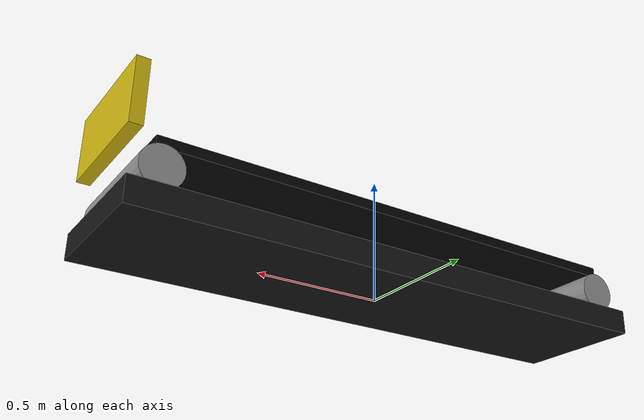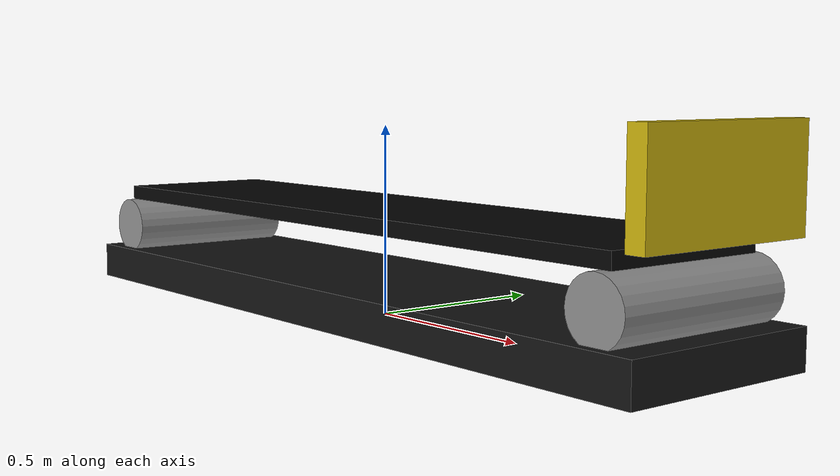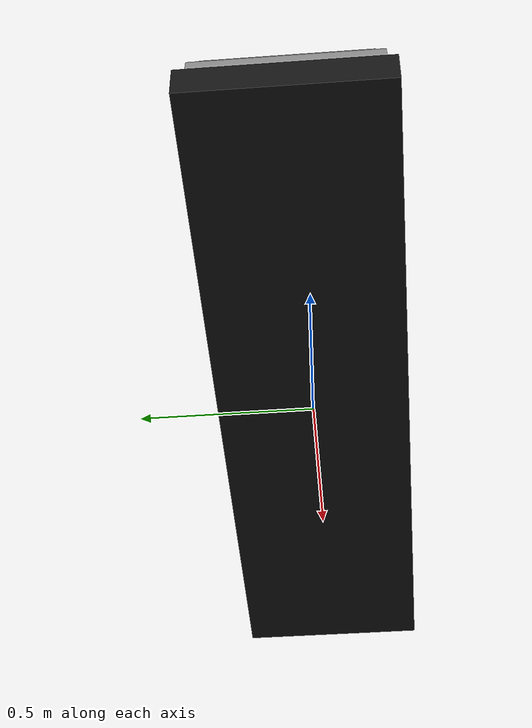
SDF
<?xml version="1.0" ?>
<sdf version="1.8">
  <model name="conveyor_belt">
    <static>true</static>
    <link name="base">
      <pose>0 0 0.05 0 0 0</pose>
      <collision name="base_collision">
        <geometry>
          <box><size>2.2 0.55 0.1</size></box>
        </geometry>
      </collision>
      <visual name="base_visual">
        <geometry>
          <box><size>2.2 0.55 0.1</size></box>
        </geometry>
        <material>
          <ambient>0.08 0.08 0.08 1</ambient>
          <diffuse>0.08 0.08 0.08 1</diffuse>
          <specular>0.25 0.25 0.25 1</specular>
        </material>
      </visual>
    </link>

    <link name="belt">
      <pose>0 0 0.27 0 0 0</pose>
      <collision name="belt_collision">
        <geometry>
          <box><size>2.0 0.45 0.04</size></box>
        </geometry>
        <surface>
          <friction>
            <ode>
              <mu>5.0</mu>
              <mu2>5.0</mu2>
              <fdir1>1 0 0</fdir1>
            </ode>
          </friction>
          <contact>
            <ode>
              <kp>1000000.0</kp>
              <kd>1.0</kd>
              <min_depth>0.001</min_depth>
            </ode>
          </contact>
        </surface>
      </collision>
      <visual name="belt_visual">
        <geometry>
          <box><size>2.0 0.45 0.04</size></box>
        </geometry>
        <material>
          <ambient>0.02 0.02 0.02 1</ambient>
          <diffuse>0.02 0.02 0.02 1</diffuse>
          <specular>0.12 0.12 0.12 1</specular>
        </material>
      </visual>
    </link>

    <link name="front_roller">
      <pose>0.98 0 0.17 1.5708 0 0</pose>
      <visual name="front_roller_visual">
        <geometry>
          <cylinder><radius>0.08</radius><length>0.5</length></cylinder>
        </geometry>
        <material>
          <ambient>0.55 0.55 0.55 1</ambient>
          <diffuse>0.55 0.55 0.55 1</diffuse>
        </material>
      </visual>
    </link>

    <link name="rear_roller">
      <pose>-0.98 0 0.17 1.5708 0 0</pose>
      <visual name="rear_roller_visual">
        <geometry>
          <cylinder><radius>0.08</radius><length>0.5</length></cylinder>
        </geometry>
        <material>
          <ambient>0.55 0.55 0.55 1</ambient>
          <diffuse>0.55 0.55 0.55 1</diffuse>
        </material>
      </visual>
    </link>

    <link name="pickup_stop">
      <pose>1.08 0 0.415 0 0 0</pose>
      <collision name="pickup_stop_collision">
        <geometry>
          <box><size>0.05 0.5 0.25</size></box>
        </geometry>
      </collision>
      <visual name="pickup_stop_visual">
        <geometry>
          <box><size>0.05 0.5 0.25</size></box>
        </geometry>
        <material>
          <ambient>0.8 0.7 0.05 1</ambient>
          <diffuse>0.8 0.7 0.05 1</diffuse>
        </material>
      </visual>
    </link>
  </model>
</sdf>
